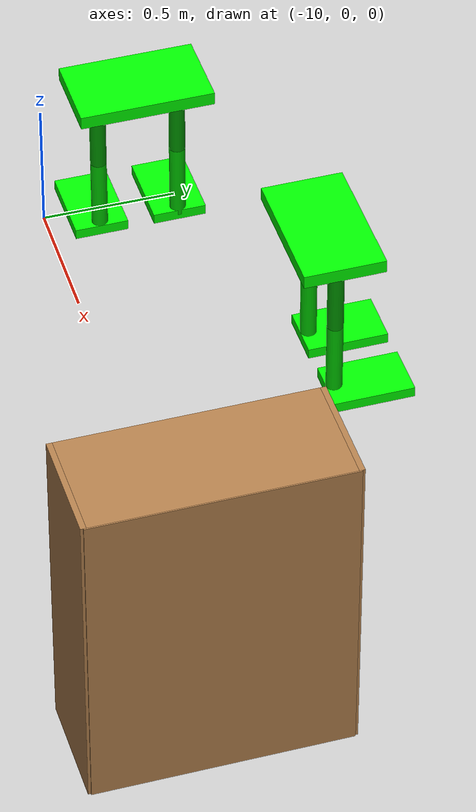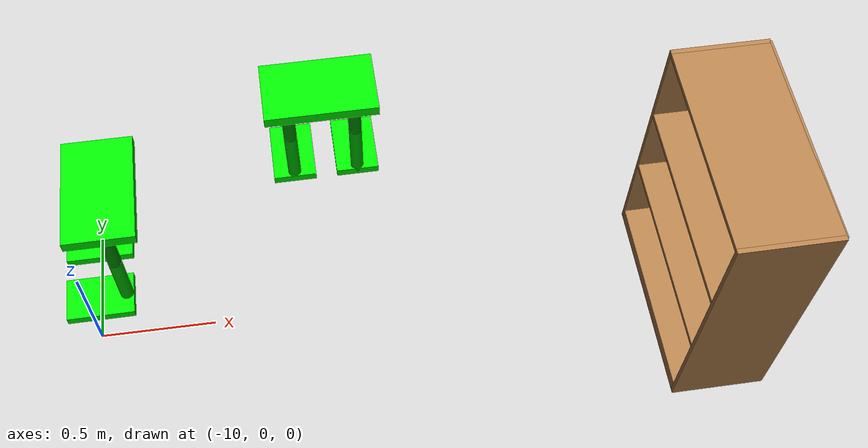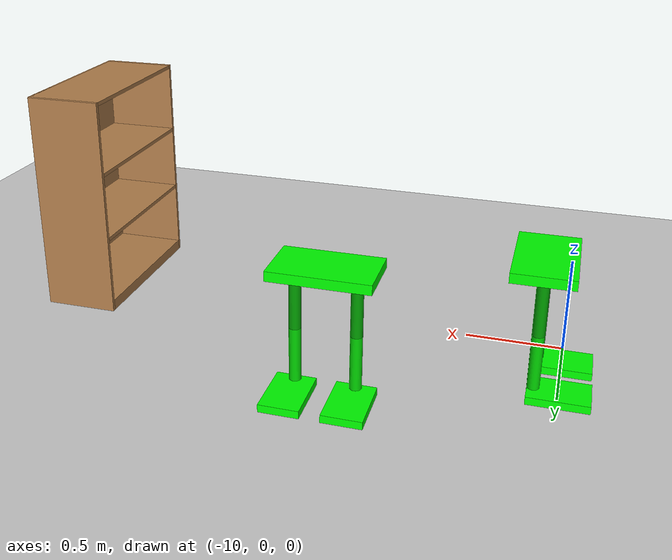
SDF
<sdf version="1.6">
 <world name="default">
  <model name="ground_plane">
   <static>1</static>
   <link name="link">
    <collision name="collision">
     <geometry><plane><normal>0 0 1</normal><size>100 100</size></plane></geometry>
     <surface><friction><ode><mu>100</mu><mu2>50</mu2></ode></friction></surface>
    </collision>
    <visual name="visual">
     <cast_shadows>0</cast_shadows>
     <geometry><plane><normal>0 0 1</normal><size>100 100</size></plane></geometry>
     <material>
      <script><uri>file://media/materials/scripts/gazebo.material</uri><name>Gazebo/Grey</name></script>
     </material>
    </visual>
   </link>
  </model>
  <model name="HumanoidRobot">
   <link name="link_0">
    <pose>0.08559 0.15 -0.26 0 -0 0</pose>
    <inertial>
     <mass>1</mass>
     <inertia>
      <ixx>0.166667</ixx>
      <ixy>0</ixy>
      <ixz>0</ixz>
      <iyy>0.166667</iyy>
      <iyz>0</iyz>
      <izz>0.166667</izz>
     </inertia>
    </inertial>
    <visual name="visual">
     <geometry><box><size>0.3 0.2 0.04</size></box></geometry>
     <material>
      <lighting>1</lighting>
      <script><uri>file://media/materials/scripts/gazebo.material</uri><name>Gazebo/Grey</name></script>
      <shader type="pixel"><normal_map>__default__</normal_map></shader>
      <ambient>0 1 0 1</ambient>
      <diffuse>0 1 0 1</diffuse>
      <specular>0 1 0 1</specular>
      <emissive>0 0 0 1</emissive>
     </material>
    </visual>
    <collision name="collision">
     <geometry><box><size>0.3 0.2 0.04</size></box></geometry>
     <surface>
      <friction>
       <ode><mu>1</mu><mu2>1</mu2><fdir1>0 0 0</fdir1><slip1>0</slip1><slip2>0</slip2></ode>
       <torsional>
        <coefficient>1</coefficient>
        <patch_radius>0</patch_radius>
        <surface_radius>0</surface_radius>
        <use_patch_radius>1</use_patch_radius>
        <ode><slip>0</slip></ode>
       </torsional>
      </friction>
      <bounce><restitution_coefficient>0</restitution_coefficient><threshold>1e+06</threshold></bounce>
      <contact>
       <collide_without_contact>0</collide_without_contact>
       <collide_without_contact_bitmask>1</collide_without_contact_bitmask>
       <collide_bitmask>1</collide_bitmask>
       <ode>
        <soft_cfm>0</soft_cfm>
        <soft_erp>0.2</soft_erp>
        <kp>1e+13</kp>
        <kd>1</kd>
        <max_vel>0.01</max_vel>
        <min_depth>0</min_depth>
       </ode>
       <bullet>
        <split_impulse>1</split_impulse>
        <split_impulse_penetration_threshold>-0.01</split_impulse_penetration_threshold>
        <soft_cfm>0</soft_cfm>
        <soft_erp>0.2</soft_erp>
        <kp>1e+13</kp>
        <kd>1</kd>
       </bullet>
      </contact>
     </surface>
    </collision>
   </link>
   <link name="link_0_clone">
    <pose>0.08646 -0.15 -0.26 0 -0 0</pose>
    <inertial>
     <mass>1</mass>
     <inertia>
      <ixx>0.166667</ixx>
      <ixy>0</ixy>
      <ixz>0</ixz>
      <iyy>0.166667</iyy>
      <iyz>0</iyz>
      <izz>0.166667</izz>
     </inertia>
    </inertial>
    <visual name="visual">
     <geometry><box><size>0.3 0.2 0.04</size></box></geometry>
     <material>
      <lighting>1</lighting>
      <script><uri>file://media/materials/scripts/gazebo.material</uri><name>Gazebo/Grey</name></script>
      <shader type="pixel"><normal_map>__default__</normal_map></shader>
      <ambient>0 1 0 1</ambient>
      <diffuse>0 1 0 1</diffuse>
      <specular>0 1 0 1</specular>
      <emissive>0 0 0 1</emissive>
     </material>
    </visual>
    <collision name="collision">
     <geometry><box><size>0.3 0.2 0.04</size></box></geometry>
     <surface>
      <friction>
       <ode><mu>1</mu><mu2>1</mu2><fdir1>0 0 0</fdir1><slip1>0</slip1><slip2>0</slip2></ode>
       <torsional>
        <coefficient>1</coefficient>
        <patch_radius>0</patch_radius>
        <surface_radius>0</surface_radius>
        <use_patch_radius>1</use_patch_radius>
        <ode><slip>0</slip></ode>
       </torsional>
      </friction>
      <bounce><restitution_coefficient>0</restitution_coefficient><threshold>1e+06</threshold></bounce>
      <contact>
       <collide_without_contact>0</collide_without_contact>
       <collide_without_contact_bitmask>1</collide_without_contact_bitmask>
       <collide_bitmask>1</collide_bitmask>
       <ode>
        <soft_cfm>0</soft_cfm>
        <soft_erp>0.2</soft_erp>
        <kp>1e+13</kp>
        <kd>1</kd>
        <max_vel>0.01</max_vel>
        <min_depth>0</min_depth>
       </ode>
       <bullet>
        <split_impulse>1</split_impulse>
        <split_impulse_penetration_threshold>-0.01</split_impulse_penetration_threshold>
        <soft_cfm>0</soft_cfm>
        <soft_erp>0.2</soft_erp>
        <kp>1e+13</kp>
        <kd>1</kd>
       </bullet>
      </contact>
     </surface>
    </collision>
   </link>
   <link name="link_1">
    <pose>-0.03441 0.15 -0.11 0 -0 0</pose>
    <inertial>
     <mass>1</mass>
     <inertia><ixx>0.145833</ixx><ixy>0</ixy><ixz>0</ixz><iyy>0.145833</iyy><iyz>0</iyz><izz>0.125</izz></inertia>
    </inertial>
    <visual name="visual">
     <geometry><cylinder><radius>0.03</radius><length>0.3</length></cylinder></geometry>
     <material>
      <lighting>1</lighting>
      <script><uri>file://media/materials/scripts/gazebo.material</uri><name>Gazebo/Grey</name></script>
      <shader type="pixel"><normal_map>__default__</normal_map></shader>
      <ambient>0 0.8 0 1</ambient>
      <diffuse>0 0.8 0 1</diffuse>
      <specular>0 0.8 0 1</specular>
      <emissive>0 0 0 1</emissive>
     </material>
    </visual>
    <collision name="collision">
     <geometry><cylinder><radius>0.03</radius><length>0.3</length></cylinder></geometry>
     <surface>
      <friction>
       <ode><mu>1</mu><mu2>1</mu2><fdir1>0 0 0</fdir1><slip1>0</slip1><slip2>0</slip2></ode>
       <torsional>
        <coefficient>1</coefficient>
        <patch_radius>0</patch_radius>
        <surface_radius>0</surface_radius>
        <use_patch_radius>1</use_patch_radius>
        <ode><slip>0</slip></ode>
       </torsional>
      </friction>
      <bounce><restitution_coefficient>0</restitution_coefficient><threshold>1e+06</threshold></bounce>
      <contact>
       <collide_without_contact>0</collide_without_contact>
       <collide_without_contact_bitmask>1</collide_without_contact_bitmask>
       <collide_bitmask>1</collide_bitmask>
       <ode>
        <soft_cfm>0</soft_cfm>
        <soft_erp>0.2</soft_erp>
        <kp>1e+13</kp>
        <kd>1</kd>
        <max_vel>0.01</max_vel>
        <min_depth>0</min_depth>
       </ode>
       <bullet>
        <split_impulse>1</split_impulse>
        <split_impulse_penetration_threshold>-0.01</split_impulse_penetration_threshold>
        <soft_cfm>0</soft_cfm>
        <soft_erp>0.2</soft_erp>
        <kp>1e+13</kp>
        <kd>1</kd>
       </bullet>
      </contact>
     </surface>
    </collision>
   </link>
   <link name="link_1_clone">
    <pose>-0.03441 -0.15 -0.11 0 -0 0</pose>
    <inertial>
     <mass>1</mass>
     <inertia><ixx>0.145833</ixx><ixy>0</ixy><ixz>0</ixz><iyy>0.145833</iyy><iyz>0</iyz><izz>0.125</izz></inertia>
    </inertial>
    <visual name="visual">
     <geometry><cylinder><radius>0.03</radius><length>0.3</length></cylinder></geometry>
     <material>
      <lighting>1</lighting>
      <script><uri>file://media/materials/scripts/gazebo.material</uri><name>Gazebo/Grey</name></script>
      <shader type="pixel"><normal_map>__default__</normal_map></shader>
      <ambient>0 0.8 0 1</ambient>
      <diffuse>0 0.8 0 1</diffuse>
      <specular>0 0.8 0 1</specular>
      <emissive>0 0 0 1</emissive>
     </material>
    </visual>
    <collision name="collision">
     <geometry><cylinder><radius>0.03</radius><length>0.3</length></cylinder></geometry>
     <surface>
      <friction>
       <ode><mu>1</mu><mu2>1</mu2><fdir1>0 0 0</fdir1><slip1>0</slip1><slip2>0</slip2></ode>
       <torsional>
        <coefficient>1</coefficient>
        <patch_radius>0</patch_radius>
        <surface_radius>0</surface_radius>
        <use_patch_radius>1</use_patch_radius>
        <ode><slip>0</slip></ode>
       </torsional>
      </friction>
      <bounce><restitution_coefficient>0</restitution_coefficient><threshold>1e+06</threshold></bounce>
      <contact>
       <collide_without_contact>0</collide_without_contact>
       <collide_without_contact_bitmask>1</collide_without_contact_bitmask>
       <collide_bitmask>1</collide_bitmask>
       <ode>
        <soft_cfm>0</soft_cfm>
        <soft_erp>0.2</soft_erp>
        <kp>1e+13</kp>
        <kd>1</kd>
        <max_vel>0.01</max_vel>
        <min_depth>0</min_depth>
       </ode>
       <bullet>
        <split_impulse>1</split_impulse>
        <split_impulse_penetration_threshold>-0.01</split_impulse_penetration_threshold>
        <soft_cfm>0</soft_cfm>
        <soft_erp>0.2</soft_erp>
        <kp>1e+13</kp>
        <kd>1</kd>
       </bullet>
      </contact>
     </surface>
    </collision>
   </link>
   <link name="link_1_clone_clone">
    <pose>-0.03441 -0.15 0.19 0 -0 0</pose>
    <inertial>
     <mass>1</mass>
     <inertia><ixx>0.145833</ixx><ixy>0</ixy><ixz>0</ixz><iyy>0.145833</iyy><iyz>0</iyz><izz>0.125</izz></inertia>
    </inertial>
    <visual name="visual">
     <geometry><cylinder><radius>0.03</radius><length>0.3</length></cylinder></geometry>
     <material>
      <lighting>1</lighting>
      <script><uri>file://media/materials/scripts/gazebo.material</uri><name>Gazebo/Grey</name></script>
      <shader type="pixel"><normal_map>__default__</normal_map></shader>
      <ambient>0 0.6 0 1</ambient>
      <diffuse>0 0.6 0 1</diffuse>
      <specular>0 0.6 0 1</specular>
      <emissive>0 0 0 1</emissive>
     </material>
    </visual>
    <collision name="collision">
     <geometry><cylinder><radius>0.03</radius><length>0.3</length></cylinder></geometry>
     <surface>
      <friction>
       <ode><mu>1</mu><mu2>1</mu2><fdir1>0 0 0</fdir1><slip1>0</slip1><slip2>0</slip2></ode>
       <torsional>
        <coefficient>1</coefficient>
        <patch_radius>0</patch_radius>
        <surface_radius>0</surface_radius>
        <use_patch_radius>1</use_patch_radius>
        <ode><slip>0</slip></ode>
       </torsional>
      </friction>
      <bounce><restitution_coefficient>0</restitution_coefficient><threshold>1e+06</threshold></bounce>
      <contact>
       <collide_without_contact>0</collide_without_contact>
       <collide_without_contact_bitmask>1</collide_without_contact_bitmask>
       <collide_bitmask>1</collide_bitmask>
       <ode>
        <soft_cfm>0</soft_cfm>
        <soft_erp>0.2</soft_erp>
        <kp>1e+13</kp>
        <kd>1</kd>
        <max_vel>0.01</max_vel>
        <min_depth>0</min_depth>
       </ode>
       <bullet>
        <split_impulse>1</split_impulse>
        <split_impulse_penetration_threshold>-0.01</split_impulse_penetration_threshold>
        <soft_cfm>0</soft_cfm>
        <soft_erp>0.2</soft_erp>
        <kp>1e+13</kp>
        <kd>1</kd>
       </bullet>
      </contact>
     </surface>
    </collision>
   </link>
   <link name="link_1_clone_clone_clone">
    <pose>-0.03441 0.15 0.19 0 -0 0</pose>
    <inertial>
     <mass>1</mass>
     <inertia><ixx>0.145833</ixx><ixy>0</ixy><ixz>0</ixz><iyy>0.145833</iyy><iyz>0</iyz><izz>0.125</izz></inertia>
    </inertial>
    <visual name="visual">
     <geometry><cylinder><radius>0.03</radius><length>0.3</length></cylinder></geometry>
     <material>
      <lighting>1</lighting>
      <script><uri>file://media/materials/scripts/gazebo.material</uri><name>Gazebo/Grey</name></script>
      <shader type="pixel"><normal_map>__default__</normal_map></shader>
      <ambient>0 0.6 0 1</ambient>
      <diffuse>0 0.6 0 1</diffuse>
      <specular>0 0.6 0 1</specular>
      <emissive>0 0 0 1</emissive>
     </material>
    </visual>
    <collision name="collision">
     <geometry><cylinder><radius>0.03</radius><length>0.3</length></cylinder></geometry>
     <surface>
      <friction>
       <ode><mu>1</mu><mu2>1</mu2><fdir1>0 0 0</fdir1><slip1>0</slip1><slip2>0</slip2></ode>
       <torsional>
        <coefficient>1</coefficient>
        <patch_radius>0</patch_radius>
        <surface_radius>0</surface_radius>
        <use_patch_radius>1</use_patch_radius>
        <ode><slip>0</slip></ode>
       </torsional>
      </friction>
      <bounce><restitution_coefficient>0</restitution_coefficient><threshold>1e+06</threshold></bounce>
      <contact>
       <collide_without_contact>0</collide_without_contact>
       <collide_without_contact_bitmask>1</collide_without_contact_bitmask>
       <collide_bitmask>1</collide_bitmask>
       <ode>
        <soft_cfm>0</soft_cfm>
        <soft_erp>0.2</soft_erp>
        <kp>1e+13</kp>
        <kd>1</kd>
        <max_vel>0.01</max_vel>
        <min_depth>0</min_depth>
       </ode>
       <bullet>
        <split_impulse>1</split_impulse>
        <split_impulse_penetration_threshold>-0.01</split_impulse_penetration_threshold>
        <soft_cfm>0</soft_cfm>
        <soft_erp>0.2</soft_erp>
        <kp>1e+13</kp>
        <kd>1</kd>
       </bullet>
      </contact>
     </surface>
    </collision>
   </link>
   <link name="link_2">
    <pose>-0.03441 0 0.36 0 -0 0</pose>
    <inertial>
     <mass>0.0372499</mass>
     <inertia>
      <ixx>0.00120118</ixx>
      <ixy>0</ixy>
      <ixz>0</ixz>
      <iyy>0.00059503</iyy>
      <iyz>0</iyz>
      <izz>0.00165655</izz>
     </inertia>
    </inertial>
    <visual name="visual">
     <geometry><box><size>0.3 0.5 0.05</size></box></geometry>
     <material>
      <lighting>1</lighting>
      <script><uri>file://media/materials/scripts/gazebo.material</uri><name>Gazebo/Grey</name></script>
      <shader type="pixel"><normal_map>__default__</normal_map></shader>
      <ambient>0 1 0 1</ambient>
      <diffuse>0 1 0 1</diffuse>
      <specular>0 1 0 1</specular>
      <emissive>0 0.2 0 1</emissive>
     </material>
    </visual>
    <collision name="collision">
     <geometry><box><size>0.3 0.5 0.05</size></box></geometry>
     <surface>
      <friction>
       <ode><mu>1</mu><mu2>1</mu2><fdir1>0 0 0</fdir1><slip1>0</slip1><slip2>0</slip2></ode>
       <torsional>
        <coefficient>1</coefficient>
        <patch_radius>0</patch_radius>
        <surface_radius>0</surface_radius>
        <use_patch_radius>1</use_patch_radius>
        <ode><slip>0</slip></ode>
       </torsional>
      </friction>
      <bounce><restitution_coefficient>0</restitution_coefficient><threshold>1e+06</threshold></bounce>
      <contact>
       <collide_without_contact>0</collide_without_contact>
       <collide_without_contact_bitmask>1</collide_without_contact_bitmask>
       <collide_bitmask>1</collide_bitmask>
       <ode>
        <soft_cfm>0</soft_cfm>
        <soft_erp>0.2</soft_erp>
        <kp>1e+13</kp>
        <kd>1</kd>
        <max_vel>0.01</max_vel>
        <min_depth>0</min_depth>
       </ode>
       <bullet>
        <split_impulse>1</split_impulse>
        <split_impulse_penetration_threshold>-0.01</split_impulse_penetration_threshold>
        <soft_cfm>0</soft_cfm>
        <soft_erp>0.2</soft_erp>
        <kp>1e+13</kp>
        <kd>1</kd>
       </bullet>
      </contact>
     </surface>
    </collision>
   </link>
   <joint name="link_1_JOINT_0" type="fixed">
    <parent>link_1</parent>
    <child>link_0</child>
    <pose>-0.12 0 0 0 -0 0</pose>
    <physics>
     <ode><limit><cfm>0</cfm><erp>0.2</erp></limit><suspension><cfm>0</cfm><erp>0.2</erp></suspension></ode>
    </physics>
   </joint>
   <joint name="link_1_clone_JOINT_1" type="revolute">
    <parent>link_1_clone</parent>
    <child>link_0_clone</child>
    <pose>-0.12 0 0 0 -0 0</pose>
    <axis>
     <xyz>1 0 0</xyz>
     <use_parent_model_frame>0</use_parent_model_frame>
     <limit>
      <lower>-1.79769e+308</lower>
      <upper>1.79769e+308</upper>
      <effort>-1</effort>
      <velocity>-1</velocity>
     </limit>
     <dynamics>
      <spring_reference>0</spring_reference>
      <spring_stiffness>0</spring_stiffness>
      <damping>0</damping>
     </dynamics>
    </axis>
    <physics>
     <ode><limit><cfm>0</cfm><erp>0.2</erp></limit><suspension><cfm>0</cfm><erp>0.2</erp></suspension></ode>
    </physics>
   </joint>
   <joint name="link_1_clone_clone_JOINT_3" type="revolute">
    <parent>link_1_clone_clone</parent>
    <child>link_1_clone</child>
    <pose>0 0 0.15 0 -0 0</pose>
    <axis>
     <xyz>0 1 0</xyz>
     <use_parent_model_frame>0</use_parent_model_frame>
     <limit>
      <lower>-1.79769e+308</lower>
      <upper>1.79769e+308</upper>
      <effort>-1</effort>
      <velocity>-1</velocity>
     </limit>
     <dynamics>
      <spring_reference>0</spring_reference>
      <spring_stiffness>0</spring_stiffness>
      <damping>0</damping>
     </dynamics>
    </axis>
    <physics>
     <ode><limit><cfm>0</cfm><erp>0.2</erp></limit><suspension><cfm>0</cfm><erp>0.2</erp></suspension></ode>
    </physics>
   </joint>
   <joint name="link_1_clone_clone_clone_JOINT_4" type="revolute">
    <parent>link_1_clone_clone_clone</parent>
    <child>link_1</child>
    <pose>0 0 0.15 0 -0 0</pose>
    <axis>
     <xyz>0 1 0</xyz>
     <use_parent_model_frame>0</use_parent_model_frame>
     <limit>
      <lower>-1.79769e+308</lower>
      <upper>1.79769e+308</upper>
      <effort>-1</effort>
      <velocity>-1</velocity>
     </limit>
     <dynamics>
      <spring_reference>0</spring_reference>
      <spring_stiffness>0</spring_stiffness>
      <damping>0</damping>
     </dynamics>
    </axis>
    <physics>
     <ode><limit><cfm>0</cfm><erp>0.2</erp></limit><suspension><cfm>0</cfm><erp>0.2</erp></suspension></ode>
    </physics>
   </joint>
   <joint name="link_2_JOINT_2" type="revolute">
    <parent>link_2</parent>
    <child>link_1_clone_clone</child>
    <pose>0 0 0.15 0 -0 0</pose>
    <axis>
     <xyz>0 1 0</xyz>
     <use_parent_model_frame>0</use_parent_model_frame>
     <limit>
      <lower>-1.79769e+308</lower>
      <upper>1.79769e+308</upper>
      <effort>-1</effort>
      <velocity>-1</velocity>
     </limit>
     <dynamics>
      <spring_reference>0</spring_reference>
      <spring_stiffness>0</spring_stiffness>
      <damping>0</damping>
     </dynamics>
    </axis>
    <physics>
     <ode><limit><cfm>0</cfm><erp>0.2</erp></limit><suspension><cfm>0</cfm><erp>0.2</erp></suspension></ode>
    </physics>
   </joint>
   <joint name="link_2_JOINT_5" type="revolute">
    <parent>link_2</parent>
    <child>link_1_clone_clone_clone</child>
    <pose>0 0 0.15 0 -0 0</pose>
    <axis>
     <xyz>0 1 0</xyz>
     <use_parent_model_frame>0</use_parent_model_frame>
     <limit>
      <lower>-1.79769e+308</lower>
      <upper>1.79769e+308</upper>
      <effort>-1</effort>
      <velocity>-1</velocity>
     </limit>
     <dynamics>
      <spring_reference>0</spring_reference>
      <spring_stiffness>0</spring_stiffness>
      <damping>0</damping>
     </dynamics>
    </axis>
    <physics>
     <ode><limit><cfm>0</cfm><erp>0.2</erp></limit><suspension><cfm>0</cfm><erp>0.2</erp></suspension></ode>
    </physics>
   </joint>
   <static>0</static>
   <pose>-8.92935 0.777841 0.279999 2e-06 -2e-06 1.58031</pose>
  </model>
  <model name="HumanoidRobot_clone">
   <link name="link_0">
    <pose>0.08559 0.15 -0.26 0 -0 0</pose>
    <inertial>
     <mass>1</mass>
     <inertia>
      <ixx>0.166667</ixx>
      <ixy>0</ixy>
      <ixz>0</ixz>
      <iyy>0.166667</iyy>
      <iyz>0</iyz>
      <izz>0.166667</izz>
     </inertia>
    </inertial>
    <visual name="visual">
     <geometry><box><size>0.3 0.2 0.04</size></box></geometry>
     <material>
      <lighting>1</lighting>
      <script><uri>file://media/materials/scripts/gazebo.material</uri><name>Gazebo/Grey</name></script>
      <shader type="pixel"><normal_map>__default__</normal_map></shader>
      <ambient>0 1 0 1</ambient>
      <diffuse>0 1 0 1</diffuse>
      <specular>0 1 0 1</specular>
      <emissive>0 0 0 1</emissive>
     </material>
    </visual>
    <collision name="collision">
     <geometry><box><size>0.3 0.2 0.04</size></box></geometry>
     <surface>
      <friction>
       <ode><mu>1</mu><mu2>1</mu2><fdir1>0 0 0</fdir1><slip1>0</slip1><slip2>0</slip2></ode>
       <torsional>
        <coefficient>1</coefficient>
        <patch_radius>0</patch_radius>
        <surface_radius>0</surface_radius>
        <use_patch_radius>1</use_patch_radius>
        <ode><slip>0</slip></ode>
       </torsional>
      </friction>
      <bounce><restitution_coefficient>0</restitution_coefficient><threshold>1e+06</threshold></bounce>
      <contact>
       <collide_without_contact>0</collide_without_contact>
       <collide_without_contact_bitmask>1</collide_without_contact_bitmask>
       <collide_bitmask>1</collide_bitmask>
       <ode>
        <soft_cfm>0</soft_cfm>
        <soft_erp>0.2</soft_erp>
        <kp>1e+13</kp>
        <kd>1</kd>
        <max_vel>0.01</max_vel>
        <min_depth>0</min_depth>
       </ode>
       <bullet>
        <split_impulse>1</split_impulse>
        <split_impulse_penetration_threshold>-0.01</split_impulse_penetration_threshold>
        <soft_cfm>0</soft_cfm>
        <soft_erp>0.2</soft_erp>
        <kp>1e+13</kp>
        <kd>1</kd>
       </bullet>
      </contact>
     </surface>
    </collision>
   </link>
   <link name="link_0_clone">
    <pose>0.08646 -0.15 -0.26 0 -0 0</pose>
    <inertial>
     <mass>1</mass>
     <inertia>
      <ixx>0.166667</ixx>
      <ixy>0</ixy>
      <ixz>0</ixz>
      <iyy>0.166667</iyy>
      <iyz>0</iyz>
      <izz>0.166667</izz>
     </inertia>
    </inertial>
    <visual name="visual">
     <geometry><box><size>0.3 0.2 0.04</size></box></geometry>
     <material>
      <lighting>1</lighting>
      <script><uri>file://media/materials/scripts/gazebo.material</uri><name>Gazebo/Grey</name></script>
      <shader type="pixel"><normal_map>__default__</normal_map></shader>
      <ambient>0 1 0 1</ambient>
      <diffuse>0 1 0 1</diffuse>
      <specular>0 1 0 1</specular>
      <emissive>0 0 0 1</emissive>
     </material>
    </visual>
    <collision name="collision">
     <geometry><box><size>0.3 0.2 0.04</size></box></geometry>
     <surface>
      <friction>
       <ode><mu>1</mu><mu2>1</mu2><fdir1>0 0 0</fdir1><slip1>0</slip1><slip2>0</slip2></ode>
       <torsional>
        <coefficient>1</coefficient>
        <patch_radius>0</patch_radius>
        <surface_radius>0</surface_radius>
        <use_patch_radius>1</use_patch_radius>
        <ode><slip>0</slip></ode>
       </torsional>
      </friction>
      <bounce><restitution_coefficient>0</restitution_coefficient><threshold>1e+06</threshold></bounce>
      <contact>
       <collide_without_contact>0</collide_without_contact>
       <collide_without_contact_bitmask>1</collide_without_contact_bitmask>
       <collide_bitmask>1</collide_bitmask>
       <ode>
        <soft_cfm>0</soft_cfm>
        <soft_erp>0.2</soft_erp>
        <kp>1e+13</kp>
        <kd>1</kd>
        <max_vel>0.01</max_vel>
        <min_depth>0</min_depth>
       </ode>
       <bullet>
        <split_impulse>1</split_impulse>
        <split_impulse_penetration_threshold>-0.01</split_impulse_penetration_threshold>
        <soft_cfm>0</soft_cfm>
        <soft_erp>0.2</soft_erp>
        <kp>1e+13</kp>
        <kd>1</kd>
       </bullet>
      </contact>
     </surface>
    </collision>
   </link>
   <link name="link_1">
    <pose>-0.03441 0.15 -0.11 0 -0 0</pose>
    <inertial>
     <mass>1</mass>
     <inertia><ixx>0.145833</ixx><ixy>0</ixy><ixz>0</ixz><iyy>0.145833</iyy><iyz>0</iyz><izz>0.125</izz></inertia>
    </inertial>
    <visual name="visual">
     <geometry><cylinder><radius>0.03</radius><length>0.3</length></cylinder></geometry>
     <material>
      <lighting>1</lighting>
      <script><uri>file://media/materials/scripts/gazebo.material</uri><name>Gazebo/Grey</name></script>
      <shader type="pixel"><normal_map>__default__</normal_map></shader>
      <ambient>0 0.8 0 1</ambient>
      <diffuse>0 0.8 0 1</diffuse>
      <specular>0 0.8 0 1</specular>
      <emissive>0 0 0 1</emissive>
     </material>
    </visual>
    <collision name="collision">
     <geometry><cylinder><radius>0.03</radius><length>0.3</length></cylinder></geometry>
     <surface>
      <friction>
       <ode><mu>1</mu><mu2>1</mu2><fdir1>0 0 0</fdir1><slip1>0</slip1><slip2>0</slip2></ode>
       <torsional>
        <coefficient>1</coefficient>
        <patch_radius>0</patch_radius>
        <surface_radius>0</surface_radius>
        <use_patch_radius>1</use_patch_radius>
        <ode><slip>0</slip></ode>
       </torsional>
      </friction>
      <bounce><restitution_coefficient>0</restitution_coefficient><threshold>1e+06</threshold></bounce>
      <contact>
       <collide_without_contact>0</collide_without_contact>
       <collide_without_contact_bitmask>1</collide_without_contact_bitmask>
       <collide_bitmask>1</collide_bitmask>
       <ode>
        <soft_cfm>0</soft_cfm>
        <soft_erp>0.2</soft_erp>
        <kp>1e+13</kp>
        <kd>1</kd>
        <max_vel>0.01</max_vel>
        <min_depth>0</min_depth>
       </ode>
       <bullet>
        <split_impulse>1</split_impulse>
        <split_impulse_penetration_threshold>-0.01</split_impulse_penetration_threshold>
        <soft_cfm>0</soft_cfm>
        <soft_erp>0.2</soft_erp>
        <kp>1e+13</kp>
        <kd>1</kd>
       </bullet>
      </contact>
     </surface>
    </collision>
   </link>
   <link name="link_1_clone">
    <pose>-0.03441 -0.15 -0.11 0 -0 0</pose>
    <inertial>
     <mass>1</mass>
     <inertia><ixx>0.145833</ixx><ixy>0</ixy><ixz>0</ixz><iyy>0.145833</iyy><iyz>0</iyz><izz>0.125</izz></inertia>
    </inertial>
    <visual name="visual">
     <geometry><cylinder><radius>0.03</radius><length>0.3</length></cylinder></geometry>
     <material>
      <lighting>1</lighting>
      <script><uri>file://media/materials/scripts/gazebo.material</uri><name>Gazebo/Grey</name></script>
      <shader type="pixel"><normal_map>__default__</normal_map></shader>
      <ambient>0 0.8 0 1</ambient>
      <diffuse>0 0.8 0 1</diffuse>
      <specular>0 0.8 0 1</specular>
      <emissive>0 0 0 1</emissive>
     </material>
    </visual>
    <collision name="collision">
     <geometry><cylinder><radius>0.03</radius><length>0.3</length></cylinder></geometry>
     <surface>
      <friction>
       <ode><mu>1</mu><mu2>1</mu2><fdir1>0 0 0</fdir1><slip1>0</slip1><slip2>0</slip2></ode>
       <torsional>
        <coefficient>1</coefficient>
        <patch_radius>0</patch_radius>
        <surface_radius>0</surface_radius>
        <use_patch_radius>1</use_patch_radius>
        <ode><slip>0</slip></ode>
       </torsional>
      </friction>
      <bounce><restitution_coefficient>0</restitution_coefficient><threshold>1e+06</threshold></bounce>
      <contact>
       <collide_without_contact>0</collide_without_contact>
       <collide_without_contact_bitmask>1</collide_without_contact_bitmask>
       <collide_bitmask>1</collide_bitmask>
       <ode>
        <soft_cfm>0</soft_cfm>
        <soft_erp>0.2</soft_erp>
        <kp>1e+13</kp>
        <kd>1</kd>
        <max_vel>0.01</max_vel>
        <min_depth>0</min_depth>
       </ode>
       <bullet>
        <split_impulse>1</split_impulse>
        <split_impulse_penetration_threshold>-0.01</split_impulse_penetration_threshold>
        <soft_cfm>0</soft_cfm>
        <soft_erp>0.2</soft_erp>
        <kp>1e+13</kp>
        <kd>1</kd>
       </bullet>
      </contact>
     </surface>
    </collision>
   </link>
   <link name="link_1_clone_clone">
    <pose>-0.03441 -0.15 0.19 0 -0 0</pose>
    <inertial>
     <mass>1</mass>
     <inertia><ixx>0.145833</ixx><ixy>0</ixy><ixz>0</ixz><iyy>0.145833</iyy><iyz>0</iyz><izz>0.125</izz></inertia>
    </inertial>
    <visual name="visual">
     <geometry><cylinder><radius>0.03</radius><length>0.3</length></cylinder></geometry>
     <material>
      <lighting>1</lighting>
      <script><uri>file://media/materials/scripts/gazebo.material</uri><name>Gazebo/Grey</name></script>
      <shader type="pixel"><normal_map>__default__</normal_map></shader>
      <ambient>0 0.6 0 1</ambient>
      <diffuse>0 0.6 0 1</diffuse>
      <specular>0 0.6 0 1</specular>
      <emissive>0 0 0 1</emissive>
     </material>
    </visual>
    <collision name="collision">
     <geometry><cylinder><radius>0.03</radius><length>0.3</length></cylinder></geometry>
     <surface>
      <friction>
       <ode><mu>1</mu><mu2>1</mu2><fdir1>0 0 0</fdir1><slip1>0</slip1><slip2>0</slip2></ode>
       <torsional>
        <coefficient>1</coefficient>
        <patch_radius>0</patch_radius>
        <surface_radius>0</surface_radius>
        <use_patch_radius>1</use_patch_radius>
        <ode><slip>0</slip></ode>
       </torsional>
      </friction>
      <bounce><restitution_coefficient>0</restitution_coefficient><threshold>1e+06</threshold></bounce>
      <contact>
       <collide_without_contact>0</collide_without_contact>
       <collide_without_contact_bitmask>1</collide_without_contact_bitmask>
       <collide_bitmask>1</collide_bitmask>
       <ode>
        <soft_cfm>0</soft_cfm>
        <soft_erp>0.2</soft_erp>
        <kp>1e+13</kp>
        <kd>1</kd>
        <max_vel>0.01</max_vel>
        <min_depth>0</min_depth>
       </ode>
       <bullet>
        <split_impulse>1</split_impulse>
        <split_impulse_penetration_threshold>-0.01</split_impulse_penetration_threshold>
        <soft_cfm>0</soft_cfm>
        <soft_erp>0.2</soft_erp>
        <kp>1e+13</kp>
        <kd>1</kd>
       </bullet>
      </contact>
     </surface>
    </collision>
   </link>
   <link name="link_1_clone_clone_clone">
    <pose>-0.03441 0.15 0.19 0 -0 0</pose>
    <inertial>
     <mass>1</mass>
     <inertia><ixx>0.145833</ixx><ixy>0</ixy><ixz>0</ixz><iyy>0.145833</iyy><iyz>0</iyz><izz>0.125</izz></inertia>
    </inertial>
    <visual name="visual">
     <geometry><cylinder><radius>0.03</radius><length>0.3</length></cylinder></geometry>
     <material>
      <lighting>1</lighting>
      <script><uri>file://media/materials/scripts/gazebo.material</uri><name>Gazebo/Grey</name></script>
      <shader type="pixel"><normal_map>__default__</normal_map></shader>
      <ambient>0 0.6 0 1</ambient>
      <diffuse>0 0.6 0 1</diffuse>
      <specular>0 0.6 0 1</specular>
      <emissive>0 0 0 1</emissive>
     </material>
    </visual>
    <collision name="collision">
     <geometry><cylinder><radius>0.03</radius><length>0.3</length></cylinder></geometry>
     <surface>
      <friction>
       <ode><mu>1</mu><mu2>1</mu2><fdir1>0 0 0</fdir1><slip1>0</slip1><slip2>0</slip2></ode>
       <torsional>
        <coefficient>1</coefficient>
        <patch_radius>0</patch_radius>
        <surface_radius>0</surface_radius>
        <use_patch_radius>1</use_patch_radius>
        <ode><slip>0</slip></ode>
       </torsional>
      </friction>
      <bounce><restitution_coefficient>0</restitution_coefficient><threshold>1e+06</threshold></bounce>
      <contact>
       <collide_without_contact>0</collide_without_contact>
       <collide_without_contact_bitmask>1</collide_without_contact_bitmask>
       <collide_bitmask>1</collide_bitmask>
       <ode>
        <soft_cfm>0</soft_cfm>
        <soft_erp>0.2</soft_erp>
        <kp>1e+13</kp>
        <kd>1</kd>
        <max_vel>0.01</max_vel>
        <min_depth>0</min_depth>
       </ode>
       <bullet>
        <split_impulse>1</split_impulse>
        <split_impulse_penetration_threshold>-0.01</split_impulse_penetration_threshold>
        <soft_cfm>0</soft_cfm>
        <soft_erp>0.2</soft_erp>
        <kp>1e+13</kp>
        <kd>1</kd>
       </bullet>
      </contact>
     </surface>
    </collision>
   </link>
   <link name="link_2">
    <pose>-0.03441 0 0.36 0 -0 0</pose>
    <inertial>
     <mass>0.0372499</mass>
     <inertia>
      <ixx>0.00120118</ixx>
      <ixy>0</ixy>
      <ixz>0</ixz>
      <iyy>0.00059503</iyy>
      <iyz>0</iyz>
      <izz>0.00165655</izz>
     </inertia>
    </inertial>
    <visual name="visual">
     <geometry><box><size>0.3 0.5 0.05</size></box></geometry>
     <material>
      <lighting>1</lighting>
      <script><uri>file://media/materials/scripts/gazebo.material</uri><name>Gazebo/Grey</name></script>
      <shader type="pixel"><normal_map>__default__</normal_map></shader>
      <ambient>0 1 0 1</ambient>
      <diffuse>0 1 0 1</diffuse>
      <specular>0 1 0 1</specular>
      <emissive>0 0.2 0 1</emissive>
     </material>
    </visual>
    <collision name="collision">
     <geometry><box><size>0.3 0.5 0.05</size></box></geometry>
     <surface>
      <friction>
       <ode><mu>1</mu><mu2>1</mu2><fdir1>0 0 0</fdir1><slip1>0</slip1><slip2>0</slip2></ode>
       <torsional>
        <coefficient>1</coefficient>
        <patch_radius>0</patch_radius>
        <surface_radius>0</surface_radius>
        <use_patch_radius>1</use_patch_radius>
        <ode><slip>0</slip></ode>
       </torsional>
      </friction>
      <bounce><restitution_coefficient>0</restitution_coefficient><threshold>1e+06</threshold></bounce>
      <contact>
       <collide_without_contact>0</collide_without_contact>
       <collide_without_contact_bitmask>1</collide_without_contact_bitmask>
       <collide_bitmask>1</collide_bitmask>
       <ode>
        <soft_cfm>0</soft_cfm>
        <soft_erp>0.2</soft_erp>
        <kp>1e+13</kp>
        <kd>1</kd>
        <max_vel>0.01</max_vel>
        <min_depth>0</min_depth>
       </ode>
       <bullet>
        <split_impulse>1</split_impulse>
        <split_impulse_penetration_threshold>-0.01</split_impulse_penetration_threshold>
        <soft_cfm>0</soft_cfm>
        <soft_erp>0.2</soft_erp>
        <kp>1e+13</kp>
        <kd>1</kd>
       </bullet>
      </contact>
     </surface>
    </collision>
   </link>
   <joint name="link_1_JOINT_0" type="fixed">
    <parent>link_1</parent>
    <child>link_0</child>
    <pose>-0.12 0 0 0 -0 0</pose>
    <physics>
     <ode><limit><cfm>0</cfm><erp>0.2</erp></limit><suspension><cfm>0</cfm><erp>0.2</erp></suspension></ode>
    </physics>
   </joint>
   <joint name="link_1_clone_JOINT_1" type="revolute">
    <parent>link_1_clone</parent>
    <child>link_0_clone</child>
    <pose>-0.12 0 0 0 -0 0</pose>
    <axis>
     <xyz>1 0 0</xyz>
     <use_parent_model_frame>0</use_parent_model_frame>
     <limit>
      <lower>-1.79769e+308</lower>
      <upper>1.79769e+308</upper>
      <effort>-1</effort>
      <velocity>-1</velocity>
     </limit>
     <dynamics>
      <spring_reference>0</spring_reference>
      <spring_stiffness>0</spring_stiffness>
      <damping>0</damping>
     </dynamics>
    </axis>
    <physics>
     <ode><limit><cfm>0</cfm><erp>0.2</erp></limit><suspension><cfm>0</cfm><erp>0.2</erp></suspension></ode>
    </physics>
   </joint>
   <joint name="link_1_clone_clone_JOINT_3" type="revolute">
    <parent>link_1_clone_clone</parent>
    <child>link_1_clone</child>
    <pose>0 0 0.15 0 -0 0</pose>
    <axis>
     <xyz>0 1 0</xyz>
     <use_parent_model_frame>0</use_parent_model_frame>
     <limit>
      <lower>-1.79769e+308</lower>
      <upper>1.79769e+308</upper>
      <effort>-1</effort>
      <velocity>-1</velocity>
     </limit>
     <dynamics>
      <spring_reference>0</spring_reference>
      <spring_stiffness>0</spring_stiffness>
      <damping>0</damping>
     </dynamics>
    </axis>
    <physics>
     <ode><limit><cfm>0</cfm><erp>0.2</erp></limit><suspension><cfm>0</cfm><erp>0.2</erp></suspension></ode>
    </physics>
   </joint>
   <joint name="link_1_clone_clone_clone_JOINT_4" type="revolute">
    <parent>link_1_clone_clone_clone</parent>
    <child>link_1</child>
    <pose>0 0 0.15 0 -0 0</pose>
    <axis>
     <xyz>0 1 0</xyz>
     <use_parent_model_frame>0</use_parent_model_frame>
     <limit>
      <lower>-1.79769e+308</lower>
      <upper>1.79769e+308</upper>
      <effort>-1</effort>
      <velocity>-1</velocity>
     </limit>
     <dynamics>
      <spring_reference>0</spring_reference>
      <spring_stiffness>0</spring_stiffness>
      <damping>0</damping>
     </dynamics>
    </axis>
    <physics>
     <ode><limit><cfm>0</cfm><erp>0.2</erp></limit><suspension><cfm>0</cfm><erp>0.2</erp></suspension></ode>
    </physics>
   </joint>
   <joint name="link_2_JOINT_2" type="revolute">
    <parent>link_2</parent>
    <child>link_1_clone_clone</child>
    <pose>0 0 0.15 0 -0 0</pose>
    <axis>
     <xyz>0 1 0</xyz>
     <use_parent_model_frame>0</use_parent_model_frame>
     <limit>
      <lower>-1.79769e+308</lower>
      <upper>1.79769e+308</upper>
      <effort>-1</effort>
      <velocity>-1</velocity>
     </limit>
     <dynamics>
      <spring_reference>0</spring_reference>
      <spring_stiffness>0</spring_stiffness>
      <damping>0</damping>
     </dynamics>
    </axis>
    <physics>
     <ode><limit><cfm>0</cfm><erp>0.2</erp></limit><suspension><cfm>0</cfm><erp>0.2</erp></suspension></ode>
    </physics>
   </joint>
   <joint name="link_2_JOINT_5" type="revolute">
    <parent>link_2</parent>
    <child>link_1_clone_clone_clone</child>
    <pose>0 0 0.15 0 -0 0</pose>
    <axis>
     <xyz>0 1 0</xyz>
     <use_parent_model_frame>0</use_parent_model_frame>
     <limit>
      <lower>-1.79769e+308</lower>
      <upper>1.79769e+308</upper>
      <effort>-1</effort>
      <velocity>-1</velocity>
     </limit>
     <dynamics>
      <spring_reference>0</spring_reference>
      <spring_stiffness>0</spring_stiffness>
      <damping>0</damping>
     </dynamics>
    </axis>
    <physics>
     <ode><limit><cfm>0</cfm><erp>0.2</erp></limit><suspension><cfm>0</cfm><erp>0.2</erp></suspension></ode>
    </physics>
   </joint>
   <static>0</static>
   <pose>-9.91761 0.332943 0.28 -1e-06 -0 -3.13254</pose>
  </model>
  <model name="bookshelf">
   <static>1</static>
   <link name="link">
    <inertial><mass>1</mass></inertial>
    <collision name="back">
     <pose>0 0.005 0.6 0 -0 0</pose>
     <geometry><box><size>0.9 0.01 1.2</size></box></geometry>
    </collision>
    <visual name="visual1">
     <pose>0 0.005 0.6 0 -0 0</pose>
     <geometry><box><size>0.9 0.01 1.2</size></box></geometry>
     <material>
      <script><uri>file://media/materials/scripts/gazebo.material</uri><name>Gazebo/Wood</name></script>
     </material>
    </visual>
    <collision name="left_side">
     <pose>0.45 -0.195 0.6 0 -0 0</pose>
     <geometry><box><size>0.02 0.4 1.2</size></box></geometry>
    </collision>
    <visual name="visual2">
     <pose>0.45 -0.195 0.6 0 -0 0</pose>
     <geometry><box><size>0.02 0.4 1.2</size></box></geometry>
     <material>
      <script><uri>file://media/materials/scripts/gazebo.material</uri><name>Gazebo/Wood</name></script>
     </material>
    </visual>
    <collision name="right_side">
     <pose>-0.45 -0.195 0.6 0 -0 0</pose>
     <geometry><box><size>0.02 0.4 1.2</size></box></geometry>
    </collision>
    <visual name="visual3">
     <pose>-0.45 -0.195 0.6 0 -0 0</pose>
     <geometry><box><size>0.02 0.4 1.2</size></box></geometry>
     <material>
      <script><uri>file://media/materials/scripts/gazebo.material</uri><name>Gazebo/Wood</name></script>
     </material>
    </visual>
    <collision name="bottom">
     <pose>0 -0.195 0.03 0 -0 0</pose>
     <geometry><box><size>0.88 0.4 0.06</size></box></geometry>
    </collision>
    <visual name="visual4">
     <pose>0 -0.195 0.03 0 -0 0</pose>
     <geometry><box><size>0.88 0.4 0.06</size></box></geometry>
     <material>
      <script><uri>file://media/materials/scripts/gazebo.material</uri><name>Gazebo/Wood</name></script>
     </material>
    </visual>
    <collision name="top">
     <pose>0 -0.195 1.19 0 -0 0</pose>
     <geometry><box><size>0.88 0.4 0.02</size></box></geometry>
    </collision>
    <visual name="visual5">
     <pose>0 -0.195 1.19 0 -0 0</pose>
     <geometry><box><size>0.88 0.4 0.02</size></box></geometry>
     <material>
      <script><uri>file://media/materials/scripts/gazebo.material</uri><name>Gazebo/Wood</name></script>
     </material>
    </visual>
    <collision name="low_shelf">
     <pose>0 -0.195 0.43 0 -0 0</pose>
     <geometry><box><size>0.88 0.4 0.02</size></box></geometry>
    </collision>
    <visual name="visual6">
     <pose>0 -0.195 0.43 0 -0 0</pose>
     <geometry><box><size>0.88 0.4 0.02</size></box></geometry>
     <material>
      <script><uri>file://media/materials/scripts/gazebo.material</uri><name>Gazebo/Wood</name></script>
     </material>
    </visual>
    <collision name="high_shelf">
     <pose>0 -0.195 0.8 0 -0 0</pose>
     <geometry><box><size>0.88 0.4 0.02</size></box></geometry>
    </collision>
    <visual name="visual7">
     <pose>0 -0.195 0.8 0 -0 0</pose>
     <geometry><box><size>0.88 0.4 0.02</size></box></geometry>
     <material>
      <script><uri>file://media/materials/scripts/gazebo.material</uri><name>Gazebo/Wood</name></script>
     </material>
    </visual>
   </link>
   <pose>-7.17182 -0.135089 0 0 0 -1.56192</pose>
  </model>
 </world>
</sdf>
